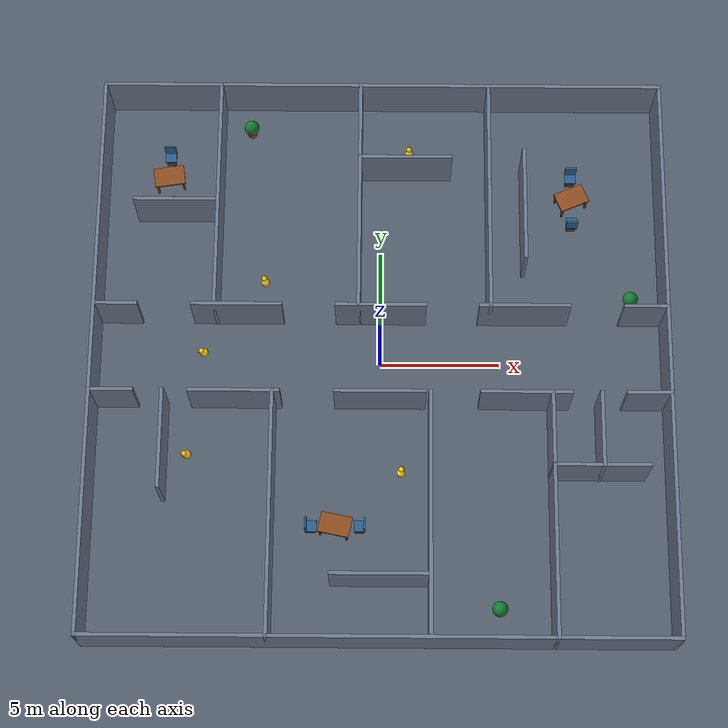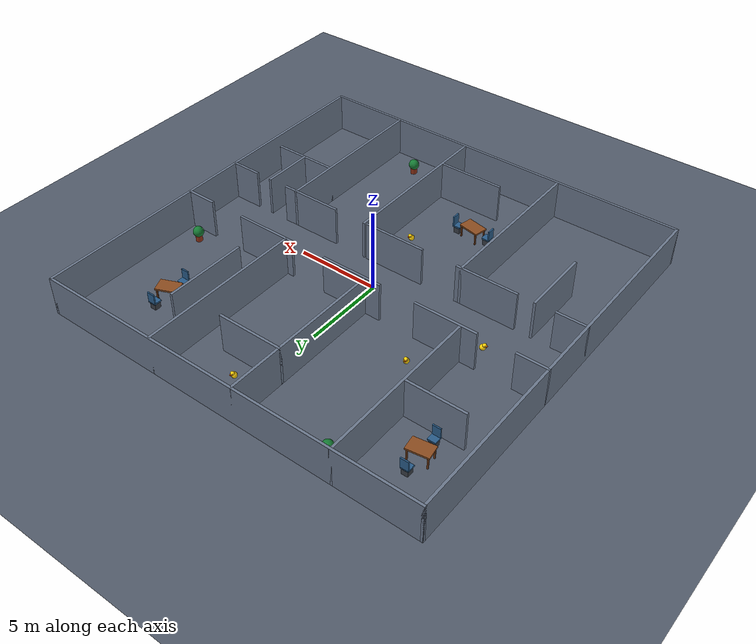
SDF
<?xml version="1.0" ?>
<!--
  SwarmDeck indoor world (template).
  Rendered by scenario/generate_world.py with a fixed seed so every run is
  identical (FR-S6 / NFR-5).
-->
<sdf version="1.9">
  <world name="swarmdeck_indoor">
    <physics name="1ms" type="ignored">
      <max_step_size>0.002</max_step_size>
      <real_time_factor>1.0</real_time_factor>
    </physics>

    <plugin filename="gz-sim-physics-system" name="gz::sim::systems::Physics"/>
    <plugin filename="gz-sim-user-commands-system" name="gz::sim::systems::UserCommands"/>
    <plugin filename="gz-sim-scene-broadcaster-system" name="gz::sim::systems::SceneBroadcaster"/>
    <plugin filename="gz-sim-sensors-system" name="gz::sim::systems::Sensors">
      <render_engine>ogre2</render_engine>
    </plugin>
    <plugin filename="gz-sim-imu-system" name="gz::sim::systems::Imu"/>

    <light type="directional" name="sun">
      <cast_shadows>true</cast_shadows>
      <pose>0 0 10 0 0 0</pose>
      <diffuse>0.9 0.9 0.9 1</diffuse>
      <specular>0.2 0.2 0.2 1</specular>
      <direction>-0.4 0.3 -0.9</direction>
    </light>

    <model name="ground_plane">
      <static>true</static>
      <link name="link">
        <collision name="collision">
          <geometry><plane><normal>0 0 1</normal><size>100 100</size></plane></geometry>
        </collision>
        <visual name="visual">
          <geometry><plane><normal>0 0 1</normal><size>100 100</size></plane></geometry>
          <material>
            <ambient>0.25 0.28 0.32 1</ambient>
            <diffuse>0.32 0.36 0.42 1</diffuse>
          </material>
        </visual>
      </link>
    </model>

    <model name="wall_0">
      <static>true</static>
      <pose>0.000 -11.925 1.200 0 0 0</pose>
      <link name="link">
        <collision name="collision">
          <geometry><box><size>24.000 0.150 2.4</size></box></geometry>
        </collision>
        <visual name="visual">
          <geometry><box><size>24.000 0.150 2.4</size></box></geometry>
          <material>
            <ambient>0.30 0.34 0.40 1</ambient>
            <diffuse>0.42 0.47 0.55 1</diffuse>
          </material>
        </visual>
      </link>
    </model>
    <model name="wall_1">
      <static>true</static>
      <pose>0.000 11.925 1.200 0 0 0</pose>
      <link name="link">
        <collision name="collision">
          <geometry><box><size>24.000 0.150 2.4</size></box></geometry>
        </collision>
        <visual name="visual">
          <geometry><box><size>24.000 0.150 2.4</size></box></geometry>
          <material>
            <ambient>0.30 0.34 0.40 1</ambient>
            <diffuse>0.42 0.47 0.55 1</diffuse>
          </material>
        </visual>
      </link>
    </model>
    <model name="wall_2">
      <static>true</static>
      <pose>-11.925 0.000 1.200 0 0 0</pose>
      <link name="link">
        <collision name="collision">
          <geometry><box><size>0.150 24.000 2.4</size></box></geometry>
        </collision>
        <visual name="visual">
          <geometry><box><size>0.150 24.000 2.4</size></box></geometry>
          <material>
            <ambient>0.30 0.34 0.40 1</ambient>
            <diffuse>0.42 0.47 0.55 1</diffuse>
          </material>
        </visual>
      </link>
    </model>
    <model name="wall_3">
      <static>true</static>
      <pose>11.925 0.000 1.200 0 0 0</pose>
      <link name="link">
        <collision name="collision">
          <geometry><box><size>0.150 24.000 2.4</size></box></geometry>
        </collision>
        <visual name="visual">
          <geometry><box><size>0.150 24.000 2.4</size></box></geometry>
          <material>
            <ambient>0.30 0.34 0.40 1</ambient>
            <diffuse>0.42 0.47 0.55 1</diffuse>
          </material>
        </visual>
      </link>
    </model>
    <model name="wall_4">
      <static>true</static>
      <pose>-11.050 1.875 1.200 0 0 0</pose>
      <link name="link">
        <collision name="collision">
          <geometry><box><size>1.900 0.150 2.4</size></box></geometry>
        </collision>
        <visual name="visual">
          <geometry><box><size>1.900 0.150 2.4</size></box></geometry>
          <material>
            <ambient>0.30 0.34 0.40 1</ambient>
            <diffuse>0.42 0.47 0.55 1</diffuse>
          </material>
        </visual>
      </link>
    </model>
    <model name="wall_5">
      <static>true</static>
      <pose>-6.000 1.875 1.200 0 0 0</pose>
      <link name="link">
        <collision name="collision">
          <geometry><box><size>3.800 0.150 2.4</size></box></geometry>
        </collision>
        <visual name="visual">
          <geometry><box><size>3.800 0.150 2.4</size></box></geometry>
          <material>
            <ambient>0.30 0.34 0.40 1</ambient>
            <diffuse>0.42 0.47 0.55 1</diffuse>
          </material>
        </visual>
      </link>
    </model>
    <model name="wall_6">
      <static>true</static>
      <pose>0.000 1.875 1.200 0 0 0</pose>
      <link name="link">
        <collision name="collision">
          <geometry><box><size>3.800 0.150 2.4</size></box></geometry>
        </collision>
        <visual name="visual">
          <geometry><box><size>3.800 0.150 2.4</size></box></geometry>
          <material>
            <ambient>0.30 0.34 0.40 1</ambient>
            <diffuse>0.42 0.47 0.55 1</diffuse>
          </material>
        </visual>
      </link>
    </model>
    <model name="wall_7">
      <static>true</static>
      <pose>6.000 1.875 1.200 0 0 0</pose>
      <link name="link">
        <collision name="collision">
          <geometry><box><size>3.800 0.150 2.4</size></box></geometry>
        </collision>
        <visual name="visual">
          <geometry><box><size>3.800 0.150 2.4</size></box></geometry>
          <material>
            <ambient>0.30 0.34 0.40 1</ambient>
            <diffuse>0.42 0.47 0.55 1</diffuse>
          </material>
        </visual>
      </link>
    </model>
    <model name="wall_8">
      <static>true</static>
      <pose>11.050 1.875 1.200 0 0 0</pose>
      <link name="link">
        <collision name="collision">
          <geometry><box><size>1.900 0.150 2.4</size></box></geometry>
        </collision>
        <visual name="visual">
          <geometry><box><size>1.900 0.150 2.4</size></box></geometry>
          <material>
            <ambient>0.30 0.34 0.40 1</ambient>
            <diffuse>0.42 0.47 0.55 1</diffuse>
          </material>
        </visual>
      </link>
    </model>
    <model name="wall_9">
      <static>true</static>
      <pose>-11.050 -1.875 1.200 0 0 0</pose>
      <link name="link">
        <collision name="collision">
          <geometry><box><size>1.900 0.150 2.4</size></box></geometry>
        </collision>
        <visual name="visual">
          <geometry><box><size>1.900 0.150 2.4</size></box></geometry>
          <material>
            <ambient>0.30 0.34 0.40 1</ambient>
            <diffuse>0.42 0.47 0.55 1</diffuse>
          </material>
        </visual>
      </link>
    </model>
    <model name="wall_10">
      <static>true</static>
      <pose>-6.000 -1.875 1.200 0 0 0</pose>
      <link name="link">
        <collision name="collision">
          <geometry><box><size>3.800 0.150 2.4</size></box></geometry>
        </collision>
        <visual name="visual">
          <geometry><box><size>3.800 0.150 2.4</size></box></geometry>
          <material>
            <ambient>0.30 0.34 0.40 1</ambient>
            <diffuse>0.42 0.47 0.55 1</diffuse>
          </material>
        </visual>
      </link>
    </model>
    <model name="wall_11">
      <static>true</static>
      <pose>0.000 -1.875 1.200 0 0 0</pose>
      <link name="link">
        <collision name="collision">
          <geometry><box><size>3.800 0.150 2.4</size></box></geometry>
        </collision>
        <visual name="visual">
          <geometry><box><size>3.800 0.150 2.4</size></box></geometry>
          <material>
            <ambient>0.30 0.34 0.40 1</ambient>
            <diffuse>0.42 0.47 0.55 1</diffuse>
          </material>
        </visual>
      </link>
    </model>
    <model name="wall_12">
      <static>true</static>
      <pose>6.000 -1.875 1.200 0 0 0</pose>
      <link name="link">
        <collision name="collision">
          <geometry><box><size>3.800 0.150 2.4</size></box></geometry>
        </collision>
        <visual name="visual">
          <geometry><box><size>3.800 0.150 2.4</size></box></geometry>
          <material>
            <ambient>0.30 0.34 0.40 1</ambient>
            <diffuse>0.42 0.47 0.55 1</diffuse>
          </material>
        </visual>
      </link>
    </model>
    <model name="wall_13">
      <static>true</static>
      <pose>11.050 -1.875 1.200 0 0 0</pose>
      <link name="link">
        <collision name="collision">
          <geometry><box><size>1.900 0.150 2.4</size></box></geometry>
        </collision>
        <visual name="visual">
          <geometry><box><size>1.900 0.150 2.4</size></box></geometry>
          <material>
            <ambient>0.30 0.34 0.40 1</ambient>
            <diffuse>0.42 0.47 0.55 1</diffuse>
          </material>
        </visual>
      </link>
    </model>
    <model name="wall_14">
      <static>true</static>
      <pose>-6.925 6.900 1.200 0 0 0</pose>
      <link name="link">
        <collision name="collision">
          <geometry><box><size>0.150 10.200 2.4</size></box></geometry>
        </collision>
        <visual name="visual">
          <geometry><box><size>0.150 10.200 2.4</size></box></geometry>
          <material>
            <ambient>0.30 0.34 0.40 1</ambient>
            <diffuse>0.42 0.47 0.55 1</diffuse>
          </material>
        </visual>
      </link>
    </model>
    <model name="wall_15">
      <static>true</static>
      <pose>-0.925 6.900 1.200 0 0 0</pose>
      <link name="link">
        <collision name="collision">
          <geometry><box><size>0.150 10.200 2.4</size></box></geometry>
        </collision>
        <visual name="visual">
          <geometry><box><size>0.150 10.200 2.4</size></box></geometry>
          <material>
            <ambient>0.30 0.34 0.40 1</ambient>
            <diffuse>0.42 0.47 0.55 1</diffuse>
          </material>
        </visual>
      </link>
    </model>
    <model name="wall_16">
      <static>true</static>
      <pose>4.575 6.900 1.200 0 0 0</pose>
      <link name="link">
        <collision name="collision">
          <geometry><box><size>0.150 10.200 2.4</size></box></geometry>
        </collision>
        <visual name="visual">
          <geometry><box><size>0.150 10.200 2.4</size></box></geometry>
          <material>
            <ambient>0.30 0.34 0.40 1</ambient>
            <diffuse>0.42 0.47 0.55 1</diffuse>
          </material>
        </visual>
      </link>
    </model>
    <model name="wall_17">
      <static>true</static>
      <pose>-4.425 -6.900 1.200 0 0 0</pose>
      <link name="link">
        <collision name="collision">
          <geometry><box><size>0.150 10.200 2.4</size></box></geometry>
        </collision>
        <visual name="visual">
          <geometry><box><size>0.150 10.200 2.4</size></box></geometry>
          <material>
            <ambient>0.30 0.34 0.40 1</ambient>
            <diffuse>0.42 0.47 0.55 1</diffuse>
          </material>
        </visual>
      </link>
    </model>
    <model name="wall_18">
      <static>true</static>
      <pose>2.075 -6.900 1.200 0 0 0</pose>
      <link name="link">
        <collision name="collision">
          <geometry><box><size>0.150 10.200 2.4</size></box></geometry>
        </collision>
        <visual name="visual">
          <geometry><box><size>0.150 10.200 2.4</size></box></geometry>
          <material>
            <ambient>0.30 0.34 0.40 1</ambient>
            <diffuse>0.42 0.47 0.55 1</diffuse>
          </material>
        </visual>
      </link>
    </model>
    <model name="wall_19">
      <static>true</static>
      <pose>7.075 -6.900 1.200 0 0 0</pose>
      <link name="link">
        <collision name="collision">
          <geometry><box><size>0.150 10.200 2.4</size></box></geometry>
        </collision>
        <visual name="visual">
          <geometry><box><size>0.150 10.200 2.4</size></box></geometry>
          <material>
            <ambient>0.30 0.34 0.40 1</ambient>
            <diffuse>0.42 0.47 0.55 1</diffuse>
          </material>
        </visual>
      </link>
    </model>
    <model name="wall_20">
      <static>true</static>
      <pose>-8.750 6.575 1.200 0 0 0</pose>
      <link name="link">
        <collision name="collision">
          <geometry><box><size>3.500 0.150 2.4</size></box></geometry>
        </collision>
        <visual name="visual">
          <geometry><box><size>3.500 0.150 2.4</size></box></geometry>
          <material>
            <ambient>0.30 0.34 0.40 1</ambient>
            <diffuse>0.42 0.47 0.55 1</diffuse>
          </material>
        </visual>
      </link>
    </model>
    <model name="wall_21">
      <static>true</static>
      <pose>1.000 8.575 1.200 0 0 0</pose>
      <link name="link">
        <collision name="collision">
          <geometry><box><size>4.000 0.150 2.4</size></box></geometry>
        </collision>
        <visual name="visual">
          <geometry><box><size>4.000 0.150 2.4</size></box></geometry>
          <material>
            <ambient>0.30 0.34 0.40 1</ambient>
            <diffuse>0.42 0.47 0.55 1</diffuse>
          </material>
        </visual>
      </link>
    </model>
    <model name="wall_22">
      <static>true</static>
      <pose>6.075 6.500 1.200 0 0 0</pose>
      <link name="link">
        <collision name="collision">
          <geometry><box><size>0.150 5.000 2.4</size></box></geometry>
        </collision>
        <visual name="visual">
          <geometry><box><size>0.150 5.000 2.4</size></box></geometry>
          <material>
            <ambient>0.30 0.34 0.40 1</ambient>
            <diffuse>0.42 0.47 0.55 1</diffuse>
          </material>
        </visual>
      </link>
    </model>
    <model name="wall_23">
      <static>true</static>
      <pose>-8.925 -3.900 1.200 0 0 0</pose>
      <link name="link">
        <collision name="collision">
          <geometry><box><size>0.150 4.200 2.4</size></box></geometry>
        </collision>
        <visual name="visual">
          <geometry><box><size>0.150 4.200 2.4</size></box></geometry>
          <material>
            <ambient>0.30 0.34 0.40 1</ambient>
            <diffuse>0.42 0.47 0.55 1</diffuse>
          </material>
        </visual>
      </link>
    </model>
    <model name="wall_24">
      <static>true</static>
      <pose>0.000 -9.425 1.200 0 0 0</pose>
      <link name="link">
        <collision name="collision">
          <geometry><box><size>4.000 0.150 2.4</size></box></geometry>
        </collision>
        <visual name="visual">
          <geometry><box><size>4.000 0.150 2.4</size></box></geometry>
          <material>
            <ambient>0.30 0.34 0.40 1</ambient>
            <diffuse>0.42 0.47 0.55 1</diffuse>
          </material>
        </visual>
      </link>
    </model>
    <model name="wall_25">
      <static>true</static>
      <pose>9.000 -4.925 1.200 0 0 0</pose>
      <link name="link">
        <collision name="collision">
          <geometry><box><size>4.000 0.150 2.4</size></box></geometry>
        </collision>
        <visual name="visual">
          <geometry><box><size>4.000 0.150 2.4</size></box></geometry>
          <material>
            <ambient>0.30 0.34 0.40 1</ambient>
            <diffuse>0.42 0.47 0.55 1</diffuse>
          </material>
        </visual>
      </link>
    </model>
    <model name="wall_26">
      <static>true</static>
      <pose>9.075 -3.400 1.200 0 0 0</pose>
      <link name="link">
        <collision name="collision">
          <geometry><box><size>0.150 3.200 2.4</size></box></geometry>
        </collision>
        <visual name="visual">
          <geometry><box><size>0.150 3.200 2.4</size></box></geometry>
          <material>
            <ambient>0.30 0.34 0.40 1</ambient>
            <diffuse>0.42 0.47 0.55 1</diffuse>
          </material>
        </visual>
      </link>
    </model>

    <model name="table_0"><static>true</static><pose>-9.2 8.3 0 0 0 0.15</pose><link name="link">
        <collision name="top_collision"><pose>0 0 0.76 0 0 0</pose><geometry><box><size>1.3 0.85 0.10</size></box></geometry></collision>
        <visual name="top"><pose>0 0 0.76 0 0 0</pose><geometry><box><size>1.3 0.85 0.10</size></box></geometry><material><ambient>0.34 0.18 0.08 1</ambient><diffuse>0.55 0.30 0.12 1</diffuse></material></visual>
        <collision name="leg_0_collision"><pose>-0.55 -0.35 0.36 0 0 0</pose><geometry><box><size>0.08 0.08 0.72</size></box></geometry></collision>
        <visual name="leg_0"><pose>-0.55 -0.35 0.36 0 0 0</pose><geometry><box><size>0.08 0.08 0.72</size></box></geometry><material><ambient>0.25 0.13 0.06 1</ambient><diffuse>0.42 0.22 0.09 1</diffuse></material></visual>
        <collision name="leg_1_collision"><pose>-0.55 0.35 0.36 0 0 0</pose><geometry><box><size>0.08 0.08 0.72</size></box></geometry></collision>
        <visual name="leg_1"><pose>-0.55 0.35 0.36 0 0 0</pose><geometry><box><size>0.08 0.08 0.72</size></box></geometry><material><ambient>0.25 0.13 0.06 1</ambient><diffuse>0.42 0.22 0.09 1</diffuse></material></visual>
        <collision name="leg_2_collision"><pose>0.55 -0.35 0.36 0 0 0</pose><geometry><box><size>0.08 0.08 0.72</size></box></geometry></collision>
        <visual name="leg_2"><pose>0.55 -0.35 0.36 0 0 0</pose><geometry><box><size>0.08 0.08 0.72</size></box></geometry><material><ambient>0.25 0.13 0.06 1</ambient><diffuse>0.42 0.22 0.09 1</diffuse></material></visual>
        <collision name="leg_3_collision"><pose>0.55 0.35 0.36 0 0 0</pose><geometry><box><size>0.08 0.08 0.72</size></box></geometry></collision>
        <visual name="leg_3"><pose>0.55 0.35 0.36 0 0 0</pose><geometry><box><size>0.08 0.08 0.72</size></box></geometry><material><ambient>0.25 0.13 0.06 1</ambient><diffuse>0.42 0.22 0.09 1</diffuse></material></visual>
      </link></model>
    <model name="table_1"><static>true</static><pose>-1.8 -7.1 0 0 0 -0.2</pose><link name="link">
        <collision name="top_collision"><pose>0 0 0.76 0 0 0</pose><geometry><box><size>1.3 0.85 0.10</size></box></geometry></collision>
        <visual name="top"><pose>0 0 0.76 0 0 0</pose><geometry><box><size>1.3 0.85 0.10</size></box></geometry><material><ambient>0.34 0.18 0.08 1</ambient><diffuse>0.55 0.30 0.12 1</diffuse></material></visual>
        <collision name="leg_0_collision"><pose>-0.55 -0.35 0.36 0 0 0</pose><geometry><box><size>0.08 0.08 0.72</size></box></geometry></collision>
        <visual name="leg_0"><pose>-0.55 -0.35 0.36 0 0 0</pose><geometry><box><size>0.08 0.08 0.72</size></box></geometry><material><ambient>0.25 0.13 0.06 1</ambient><diffuse>0.42 0.22 0.09 1</diffuse></material></visual>
        <collision name="leg_1_collision"><pose>-0.55 0.35 0.36 0 0 0</pose><geometry><box><size>0.08 0.08 0.72</size></box></geometry></collision>
        <visual name="leg_1"><pose>-0.55 0.35 0.36 0 0 0</pose><geometry><box><size>0.08 0.08 0.72</size></box></geometry><material><ambient>0.25 0.13 0.06 1</ambient><diffuse>0.42 0.22 0.09 1</diffuse></material></visual>
        <collision name="leg_2_collision"><pose>0.55 -0.35 0.36 0 0 0</pose><geometry><box><size>0.08 0.08 0.72</size></box></geometry></collision>
        <visual name="leg_2"><pose>0.55 -0.35 0.36 0 0 0</pose><geometry><box><size>0.08 0.08 0.72</size></box></geometry><material><ambient>0.25 0.13 0.06 1</ambient><diffuse>0.42 0.22 0.09 1</diffuse></material></visual>
        <collision name="leg_3_collision"><pose>0.55 0.35 0.36 0 0 0</pose><geometry><box><size>0.08 0.08 0.72</size></box></geometry></collision>
        <visual name="leg_3"><pose>0.55 0.35 0.36 0 0 0</pose><geometry><box><size>0.08 0.08 0.72</size></box></geometry><material><ambient>0.25 0.13 0.06 1</ambient><diffuse>0.42 0.22 0.09 1</diffuse></material></visual>
      </link></model>
    <model name="table_2"><static>true</static><pose>8.2 7.4 0 0 0 0.4</pose><link name="link">
        <collision name="top_collision"><pose>0 0 0.76 0 0 0</pose><geometry><box><size>1.3 0.85 0.10</size></box></geometry></collision>
        <visual name="top"><pose>0 0 0.76 0 0 0</pose><geometry><box><size>1.3 0.85 0.10</size></box></geometry><material><ambient>0.34 0.18 0.08 1</ambient><diffuse>0.55 0.30 0.12 1</diffuse></material></visual>
        <collision name="leg_0_collision"><pose>-0.55 -0.35 0.36 0 0 0</pose><geometry><box><size>0.08 0.08 0.72</size></box></geometry></collision>
        <visual name="leg_0"><pose>-0.55 -0.35 0.36 0 0 0</pose><geometry><box><size>0.08 0.08 0.72</size></box></geometry><material><ambient>0.25 0.13 0.06 1</ambient><diffuse>0.42 0.22 0.09 1</diffuse></material></visual>
        <collision name="leg_1_collision"><pose>-0.55 0.35 0.36 0 0 0</pose><geometry><box><size>0.08 0.08 0.72</size></box></geometry></collision>
        <visual name="leg_1"><pose>-0.55 0.35 0.36 0 0 0</pose><geometry><box><size>0.08 0.08 0.72</size></box></geometry><material><ambient>0.25 0.13 0.06 1</ambient><diffuse>0.42 0.22 0.09 1</diffuse></material></visual>
        <collision name="leg_2_collision"><pose>0.55 -0.35 0.36 0 0 0</pose><geometry><box><size>0.08 0.08 0.72</size></box></geometry></collision>
        <visual name="leg_2"><pose>0.55 -0.35 0.36 0 0 0</pose><geometry><box><size>0.08 0.08 0.72</size></box></geometry><material><ambient>0.25 0.13 0.06 1</ambient><diffuse>0.42 0.22 0.09 1</diffuse></material></visual>
        <collision name="leg_3_collision"><pose>0.55 0.35 0.36 0 0 0</pose><geometry><box><size>0.08 0.08 0.72</size></box></geometry></collision>
        <visual name="leg_3"><pose>0.55 0.35 0.36 0 0 0</pose><geometry><box><size>0.08 0.08 0.72</size></box></geometry><material><ambient>0.25 0.13 0.06 1</ambient><diffuse>0.42 0.22 0.09 1</diffuse></material></visual>
      </link></model>
    <model name="chair_0"><static>true</static><pose>-9.2 7.25 0 0 0 1.57</pose><link name="link">
        <collision name="seat_collision"><pose>0 0 0.45 0 0 0</pose><geometry><box><size>0.48 0.48 0.09</size></box></geometry></collision>
        <visual name="seat"><pose>0 0 0.45 0 0 0</pose><geometry><box><size>0.48 0.48 0.09</size></box></geometry><material><ambient>0.10 0.20 0.30 1</ambient><diffuse>0.16 0.36 0.54 1</diffuse></material></visual>
        <collision name="back_collision"><pose>-0.20 0 0.78 0 0 0</pose><geometry><box><size>0.08 0.48 0.62</size></box></geometry></collision>
        <visual name="back"><pose>-0.20 0 0.78 0 0 0</pose><geometry><box><size>0.08 0.48 0.62</size></box></geometry><material><ambient>0.10 0.20 0.30 1</ambient><diffuse>0.16 0.36 0.54 1</diffuse></material></visual>
        <visual name="legs"><pose>0 0 0.21 0 0 0</pose><geometry><box><size>0.38 0.38 0.42</size></box></geometry><material><ambient>0.15 0.16 0.18 1</ambient><diffuse>0.22 0.24 0.27 1</diffuse></material></visual>
      </link></model>
    <model name="chair_1"><static>true</static><pose>-9.2 9.35 0 0 0 -1.57</pose><link name="link">
        <collision name="seat_collision"><pose>0 0 0.45 0 0 0</pose><geometry><box><size>0.48 0.48 0.09</size></box></geometry></collision>
        <visual name="seat"><pose>0 0 0.45 0 0 0</pose><geometry><box><size>0.48 0.48 0.09</size></box></geometry><material><ambient>0.10 0.20 0.30 1</ambient><diffuse>0.16 0.36 0.54 1</diffuse></material></visual>
        <collision name="back_collision"><pose>-0.20 0 0.78 0 0 0</pose><geometry><box><size>0.08 0.48 0.62</size></box></geometry></collision>
        <visual name="back"><pose>-0.20 0 0.78 0 0 0</pose><geometry><box><size>0.08 0.48 0.62</size></box></geometry><material><ambient>0.10 0.20 0.30 1</ambient><diffuse>0.16 0.36 0.54 1</diffuse></material></visual>
        <visual name="legs"><pose>0 0 0.21 0 0 0</pose><geometry><box><size>0.38 0.38 0.42</size></box></geometry><material><ambient>0.15 0.16 0.18 1</ambient><diffuse>0.22 0.24 0.27 1</diffuse></material></visual>
      </link></model>
    <model name="chair_2"><static>true</static><pose>-2.8 -7.1 0 0 0 0.0</pose><link name="link">
        <collision name="seat_collision"><pose>0 0 0.45 0 0 0</pose><geometry><box><size>0.48 0.48 0.09</size></box></geometry></collision>
        <visual name="seat"><pose>0 0 0.45 0 0 0</pose><geometry><box><size>0.48 0.48 0.09</size></box></geometry><material><ambient>0.10 0.20 0.30 1</ambient><diffuse>0.16 0.36 0.54 1</diffuse></material></visual>
        <collision name="back_collision"><pose>-0.20 0 0.78 0 0 0</pose><geometry><box><size>0.08 0.48 0.62</size></box></geometry></collision>
        <visual name="back"><pose>-0.20 0 0.78 0 0 0</pose><geometry><box><size>0.08 0.48 0.62</size></box></geometry><material><ambient>0.10 0.20 0.30 1</ambient><diffuse>0.16 0.36 0.54 1</diffuse></material></visual>
        <visual name="legs"><pose>0 0 0.21 0 0 0</pose><geometry><box><size>0.38 0.38 0.42</size></box></geometry><material><ambient>0.15 0.16 0.18 1</ambient><diffuse>0.22 0.24 0.27 1</diffuse></material></visual>
      </link></model>
    <model name="chair_3"><static>true</static><pose>-0.8 -7.1 0 0 0 3.14159</pose><link name="link">
        <collision name="seat_collision"><pose>0 0 0.45 0 0 0</pose><geometry><box><size>0.48 0.48 0.09</size></box></geometry></collision>
        <visual name="seat"><pose>0 0 0.45 0 0 0</pose><geometry><box><size>0.48 0.48 0.09</size></box></geometry><material><ambient>0.10 0.20 0.30 1</ambient><diffuse>0.16 0.36 0.54 1</diffuse></material></visual>
        <collision name="back_collision"><pose>-0.20 0 0.78 0 0 0</pose><geometry><box><size>0.08 0.48 0.62</size></box></geometry></collision>
        <visual name="back"><pose>-0.20 0 0.78 0 0 0</pose><geometry><box><size>0.08 0.48 0.62</size></box></geometry><material><ambient>0.10 0.20 0.30 1</ambient><diffuse>0.16 0.36 0.54 1</diffuse></material></visual>
        <visual name="legs"><pose>0 0 0.21 0 0 0</pose><geometry><box><size>0.38 0.38 0.42</size></box></geometry><material><ambient>0.15 0.16 0.18 1</ambient><diffuse>0.22 0.24 0.27 1</diffuse></material></visual>
      </link></model>
    <model name="chair_4"><static>true</static><pose>8.2 6.35 0 0 0 1.57</pose><link name="link">
        <collision name="seat_collision"><pose>0 0 0.45 0 0 0</pose><geometry><box><size>0.48 0.48 0.09</size></box></geometry></collision>
        <visual name="seat"><pose>0 0 0.45 0 0 0</pose><geometry><box><size>0.48 0.48 0.09</size></box></geometry><material><ambient>0.10 0.20 0.30 1</ambient><diffuse>0.16 0.36 0.54 1</diffuse></material></visual>
        <collision name="back_collision"><pose>-0.20 0 0.78 0 0 0</pose><geometry><box><size>0.08 0.48 0.62</size></box></geometry></collision>
        <visual name="back"><pose>-0.20 0 0.78 0 0 0</pose><geometry><box><size>0.08 0.48 0.62</size></box></geometry><material><ambient>0.10 0.20 0.30 1</ambient><diffuse>0.16 0.36 0.54 1</diffuse></material></visual>
        <visual name="legs"><pose>0 0 0.21 0 0 0</pose><geometry><box><size>0.38 0.38 0.42</size></box></geometry><material><ambient>0.15 0.16 0.18 1</ambient><diffuse>0.22 0.24 0.27 1</diffuse></material></visual>
      </link></model>
    <model name="chair_5"><static>true</static><pose>8.2 8.45 0 0 0 -1.57</pose><link name="link">
        <collision name="seat_collision"><pose>0 0 0.45 0 0 0</pose><geometry><box><size>0.48 0.48 0.09</size></box></geometry></collision>
        <visual name="seat"><pose>0 0 0.45 0 0 0</pose><geometry><box><size>0.48 0.48 0.09</size></box></geometry><material><ambient>0.10 0.20 0.30 1</ambient><diffuse>0.16 0.36 0.54 1</diffuse></material></visual>
        <collision name="back_collision"><pose>-0.20 0 0.78 0 0 0</pose><geometry><box><size>0.08 0.48 0.62</size></box></geometry></collision>
        <visual name="back"><pose>-0.20 0 0.78 0 0 0</pose><geometry><box><size>0.08 0.48 0.62</size></box></geometry><material><ambient>0.10 0.20 0.30 1</ambient><diffuse>0.16 0.36 0.54 1</diffuse></material></visual>
        <visual name="legs"><pose>0 0 0.21 0 0 0</pose><geometry><box><size>0.38 0.38 0.42</size></box></geometry><material><ambient>0.15 0.16 0.18 1</ambient><diffuse>0.22 0.24 0.27 1</diffuse></material></visual>
      </link></model>
    <model name="painting_0"><static>true</static><pose>-9.0 11.9 1.35 0 0 0.0</pose><link name="link">
        <visual name="frame"><geometry><box><size>1.15 0.055 0.78</size></box></geometry><material><ambient>0.07 0.045 0.025 1</ambient><diffuse>0.12 0.07 0.03 1</diffuse></material></visual>
        <visual name="canvas"><pose>0 -0.032 0 0 0 0</pose><geometry><box><size>0.98 0.018 0.61</size></box></geometry><material><ambient>0.10 0.42 0.72 1</ambient><diffuse>0.10 0.42 0.72 1</diffuse></material></visual>
      </link></model>
    <model name="painting_1"><static>true</static><pose>1.2 -11.9 1.4 0 0 0.0</pose><link name="link">
        <visual name="frame"><geometry><box><size>1.15 0.055 0.78</size></box></geometry><material><ambient>0.07 0.045 0.025 1</ambient><diffuse>0.12 0.07 0.03 1</diffuse></material></visual>
        <visual name="canvas"><pose>0 -0.032 0 0 0 0</pose><geometry><box><size>0.98 0.018 0.61</size></box></geometry><material><ambient>0.78 0.24 0.18 1</ambient><diffuse>0.78 0.24 0.18 1</diffuse></material></visual>
      </link></model>
    <model name="painting_2"><static>true</static><pose>11.9 7.0 1.3 0 0 1.5708</pose><link name="link">
        <visual name="frame"><geometry><box><size>1.15 0.055 0.78</size></box></geometry><material><ambient>0.07 0.045 0.025 1</ambient><diffuse>0.12 0.07 0.03 1</diffuse></material></visual>
        <visual name="canvas"><pose>0 -0.032 0 0 0 0</pose><geometry><box><size>0.98 0.018 0.61</size></box></geometry><material><ambient>0.24 0.62 0.40 1</ambient><diffuse>0.24 0.62 0.40 1</diffuse></material></visual>
      </link></model>
    <model name="plant_0"><static>true</static><pose>-5.7 10.7 0 0 0 0</pose><link name="link">
        <collision name="pot_collision"><pose>0 0 0.20 0 0 0</pose><geometry><cylinder><radius>0.20</radius><length>0.40</length></cylinder></geometry></collision>
        <visual name="pot"><pose>0 0 0.20 0 0 0</pose><geometry><cylinder><radius>0.20</radius><length>0.40</length></cylinder></geometry><material><ambient>0.36 0.12 0.06 1</ambient><diffuse>0.58 0.20 0.09 1</diffuse></material></visual>
        <visual name="leaves"><pose>0 0 0.62 0 0 0</pose><geometry><sphere><radius>0.32</radius></sphere></geometry><material><ambient>0.05 0.28 0.12 1</ambient><diffuse>0.08 0.48 0.20 1</diffuse></material></visual>
      </link></model>
    <model name="plant_1"><static>true</static><pose>4.9 -10.5 0 0 0 0</pose><link name="link">
        <collision name="pot_collision"><pose>0 0 0.20 0 0 0</pose><geometry><cylinder><radius>0.20</radius><length>0.40</length></cylinder></geometry></collision>
        <visual name="pot"><pose>0 0 0.20 0 0 0</pose><geometry><cylinder><radius>0.20</radius><length>0.40</length></cylinder></geometry><material><ambient>0.36 0.12 0.06 1</ambient><diffuse>0.58 0.20 0.09 1</diffuse></material></visual>
        <visual name="leaves"><pose>0 0 0.62 0 0 0</pose><geometry><sphere><radius>0.32</radius></sphere></geometry><material><ambient>0.05 0.28 0.12 1</ambient><diffuse>0.08 0.48 0.20 1</diffuse></material></visual>
      </link></model>
    <model name="plant_2"><static>true</static><pose>10.6 2.8 0 0 0 0</pose><link name="link">
        <collision name="pot_collision"><pose>0 0 0.20 0 0 0</pose><geometry><cylinder><radius>0.20</radius><length>0.40</length></cylinder></geometry></collision>
        <visual name="pot"><pose>0 0 0.20 0 0 0</pose><geometry><cylinder><radius>0.20</radius><length>0.40</length></cylinder></geometry><material><ambient>0.36 0.12 0.06 1</ambient><diffuse>0.58 0.20 0.09 1</diffuse></material></visual>
        <visual name="leaves"><pose>0 0 0.62 0 0 0</pose><geometry><sphere><radius>0.32</radius></sphere></geometry><material><ambient>0.05 0.28 0.12 1</ambient><diffuse>0.08 0.48 0.20 1</diffuse></material></visual>
      </link></model>

    <model name="rubber_duck_0">
      <static>true</static>
      <pose>-7.450 0.450 0.16 0 0 3.142</pose>
      <link name="link">
        <collision name="body_collision">
          <geometry><sphere><radius>0.17</radius></sphere></geometry>
        </collision>
        <visual name="body">
          <geometry><sphere><radius>0.17</radius></sphere></geometry>
          <material>
            <ambient>0.95 0.68 0.01 1</ambient>
            <diffuse>1.0 0.82 0.03 1</diffuse>
            <emissive>0.08 0.05 0.0 1</emissive>
          </material>
        </visual>
        <visual name="head">
          <pose>0.105 0 0.185 0 0 0</pose>
          <geometry><sphere><radius>0.115</radius></sphere></geometry>
          <material><ambient>0.95 0.68 0.01 1</ambient><diffuse>1.0 0.82 0.03 1</diffuse></material>
        </visual>
        <visual name="beak">
          <pose>0.215 0 0.165 0 0 0</pose>
          <geometry><box><size>0.10 0.105 0.045</size></box></geometry>
          <material><ambient>0.95 0.28 0.01 1</ambient><diffuse>1.0 0.38 0.02 1</diffuse></material>
        </visual>
        <visual name="eye_left">
          <pose>0.18 0.078 0.218 0 0 0</pose>
          <geometry><sphere><radius>0.018</radius></sphere></geometry>
          <material><ambient>0.01 0.01 0.015 1</ambient><diffuse>0.02 0.02 0.025 1</diffuse></material>
        </visual>
        <visual name="eye_right">
          <pose>0.18 -0.078 0.218 0 0 0</pose>
          <geometry><sphere><radius>0.018</radius></sphere></geometry>
          <material><ambient>0.01 0.01 0.015 1</ambient><diffuse>0.02 0.02 0.025 1</diffuse></material>
        </visual>
      </link>
    </model>
    <model name="rubber_duck_1">
      <static>true</static>
      <pose>1.201 9.706 0.16 0 0 1.595</pose>
      <link name="link">
        <collision name="body_collision">
          <geometry><sphere><radius>0.17</radius></sphere></geometry>
        </collision>
        <visual name="body">
          <geometry><sphere><radius>0.17</radius></sphere></geometry>
          <material>
            <ambient>0.95 0.68 0.01 1</ambient>
            <diffuse>1.0 0.82 0.03 1</diffuse>
            <emissive>0.08 0.05 0.0 1</emissive>
          </material>
        </visual>
        <visual name="head">
          <pose>0.105 0 0.185 0 0 0</pose>
          <geometry><sphere><radius>0.115</radius></sphere></geometry>
          <material><ambient>0.95 0.68 0.01 1</ambient><diffuse>1.0 0.82 0.03 1</diffuse></material>
        </visual>
        <visual name="beak">
          <pose>0.215 0 0.165 0 0 0</pose>
          <geometry><box><size>0.10 0.105 0.045</size></box></geometry>
          <material><ambient>0.95 0.28 0.01 1</ambient><diffuse>1.0 0.38 0.02 1</diffuse></material>
        </visual>
        <visual name="eye_left">
          <pose>0.18 0.078 0.218 0 0 0</pose>
          <geometry><sphere><radius>0.018</radius></sphere></geometry>
          <material><ambient>0.01 0.01 0.015 1</ambient><diffuse>0.02 0.02 0.025 1</diffuse></material>
        </visual>
        <visual name="eye_right">
          <pose>0.18 -0.078 0.218 0 0 0</pose>
          <geometry><sphere><radius>0.018</radius></sphere></geometry>
          <material><ambient>0.01 0.01 0.015 1</ambient><diffuse>0.02 0.02 0.025 1</diffuse></material>
        </visual>
      </link>
    </model>
    <model name="rubber_duck_2">
      <static>true</static>
      <pose>-4.940 3.636 0.16 0 0 1.966</pose>
      <link name="link">
        <collision name="body_collision">
          <geometry><sphere><radius>0.17</radius></sphere></geometry>
        </collision>
        <visual name="body">
          <geometry><sphere><radius>0.17</radius></sphere></geometry>
          <material>
            <ambient>0.95 0.68 0.01 1</ambient>
            <diffuse>1.0 0.82 0.03 1</diffuse>
            <emissive>0.08 0.05 0.0 1</emissive>
          </material>
        </visual>
        <visual name="head">
          <pose>0.105 0 0.185 0 0 0</pose>
          <geometry><sphere><radius>0.115</radius></sphere></geometry>
          <material><ambient>0.95 0.68 0.01 1</ambient><diffuse>1.0 0.82 0.03 1</diffuse></material>
        </visual>
        <visual name="beak">
          <pose>0.215 0 0.165 0 0 0</pose>
          <geometry><box><size>0.10 0.105 0.045</size></box></geometry>
          <material><ambient>0.95 0.28 0.01 1</ambient><diffuse>1.0 0.38 0.02 1</diffuse></material>
        </visual>
        <visual name="eye_left">
          <pose>0.18 0.078 0.218 0 0 0</pose>
          <geometry><sphere><radius>0.018</radius></sphere></geometry>
          <material><ambient>0.01 0.01 0.015 1</ambient><diffuse>0.02 0.02 0.025 1</diffuse></material>
        </visual>
        <visual name="eye_right">
          <pose>0.18 -0.078 0.218 0 0 0</pose>
          <geometry><sphere><radius>0.018</radius></sphere></geometry>
          <material><ambient>0.01 0.01 0.015 1</ambient><diffuse>0.02 0.02 0.025 1</diffuse></material>
        </visual>
      </link>
    </model>
    <model name="rubber_duck_3">
      <static>true</static>
      <pose>0.884 -4.769 0.16 0 0 1.382</pose>
      <link name="link">
        <collision name="body_collision">
          <geometry><sphere><radius>0.17</radius></sphere></geometry>
        </collision>
        <visual name="body">
          <geometry><sphere><radius>0.17</radius></sphere></geometry>
          <material>
            <ambient>0.95 0.68 0.01 1</ambient>
            <diffuse>1.0 0.82 0.03 1</diffuse>
            <emissive>0.08 0.05 0.0 1</emissive>
          </material>
        </visual>
        <visual name="head">
          <pose>0.105 0 0.185 0 0 0</pose>
          <geometry><sphere><radius>0.115</radius></sphere></geometry>
          <material><ambient>0.95 0.68 0.01 1</ambient><diffuse>1.0 0.82 0.03 1</diffuse></material>
        </visual>
        <visual name="beak">
          <pose>0.215 0 0.165 0 0 0</pose>
          <geometry><box><size>0.10 0.105 0.045</size></box></geometry>
          <material><ambient>0.95 0.28 0.01 1</ambient><diffuse>1.0 0.38 0.02 1</diffuse></material>
        </visual>
        <visual name="eye_left">
          <pose>0.18 0.078 0.218 0 0 0</pose>
          <geometry><sphere><radius>0.018</radius></sphere></geometry>
          <material><ambient>0.01 0.01 0.015 1</ambient><diffuse>0.02 0.02 0.025 1</diffuse></material>
        </visual>
        <visual name="eye_right">
          <pose>0.18 -0.078 0.218 0 0 0</pose>
          <geometry><sphere><radius>0.018</radius></sphere></geometry>
          <material><ambient>0.01 0.01 0.015 1</ambient><diffuse>0.02 0.02 0.025 1</diffuse></material>
        </visual>
      </link>
    </model>
    <model name="rubber_duck_4">
      <static>true</static>
      <pose>-8.010 -4.024 0.16 0 0 -2.930</pose>
      <link name="link">
        <collision name="body_collision">
          <geometry><sphere><radius>0.17</radius></sphere></geometry>
        </collision>
        <visual name="body">
          <geometry><sphere><radius>0.17</radius></sphere></geometry>
          <material>
            <ambient>0.95 0.68 0.01 1</ambient>
            <diffuse>1.0 0.82 0.03 1</diffuse>
            <emissive>0.08 0.05 0.0 1</emissive>
          </material>
        </visual>
        <visual name="head">
          <pose>0.105 0 0.185 0 0 0</pose>
          <geometry><sphere><radius>0.115</radius></sphere></geometry>
          <material><ambient>0.95 0.68 0.01 1</ambient><diffuse>1.0 0.82 0.03 1</diffuse></material>
        </visual>
        <visual name="beak">
          <pose>0.215 0 0.165 0 0 0</pose>
          <geometry><box><size>0.10 0.105 0.045</size></box></geometry>
          <material><ambient>0.95 0.28 0.01 1</ambient><diffuse>1.0 0.38 0.02 1</diffuse></material>
        </visual>
        <visual name="eye_left">
          <pose>0.18 0.078 0.218 0 0 0</pose>
          <geometry><sphere><radius>0.018</radius></sphere></geometry>
          <material><ambient>0.01 0.01 0.015 1</ambient><diffuse>0.02 0.02 0.025 1</diffuse></material>
        </visual>
        <visual name="eye_right">
          <pose>0.18 -0.078 0.218 0 0 0</pose>
          <geometry><sphere><radius>0.018</radius></sphere></geometry>
          <material><ambient>0.01 0.01 0.015 1</ambient><diffuse>0.02 0.02 0.025 1</diffuse></material>
        </visual>
      </link>
    </model>

  </world>
</sdf>
